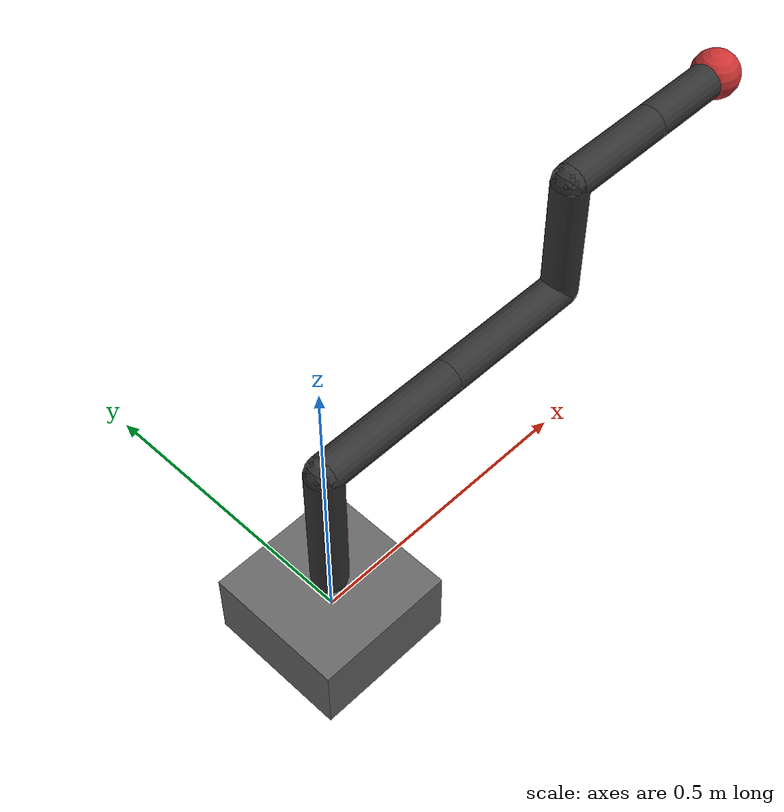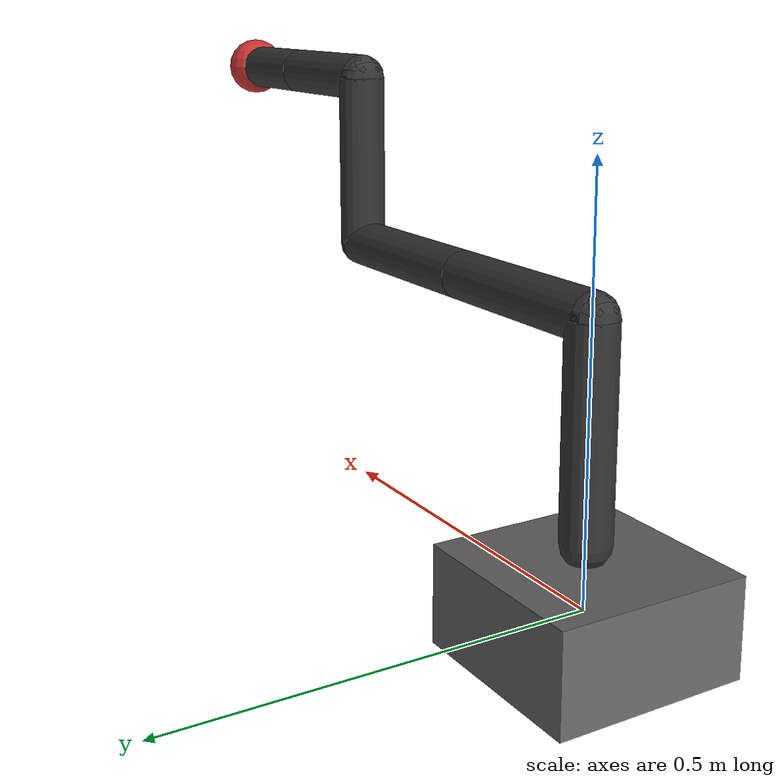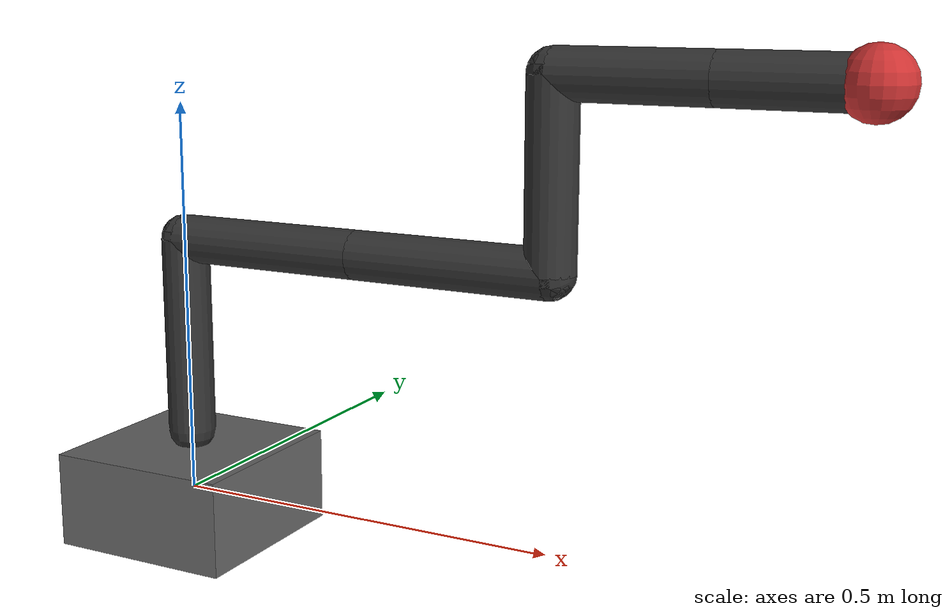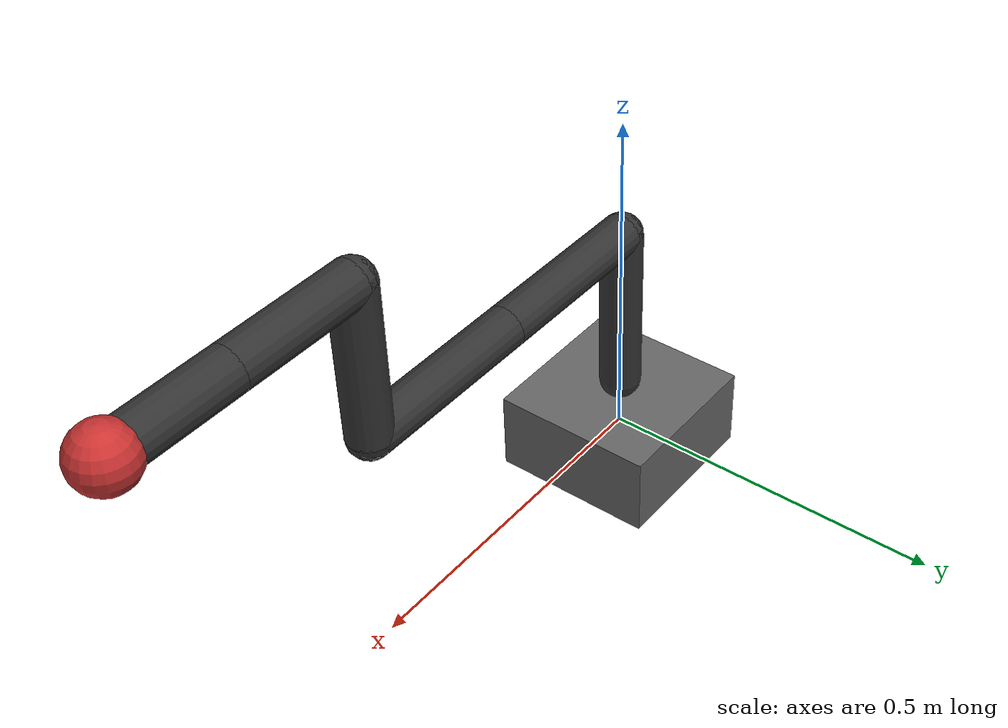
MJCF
<mujoco model="six_dof_chain">
  <compiler angle="radian" inertiafromgeom="true"/>
  <option timestep="0.002" gravity="0 0 -9.81" integrator="RK4"/>

  <default>
    <geom type="capsule" size="0.03" rgba="0.2 0.2 0.2 1"/>
    <joint type="hinge" damping="0.2" armature="0.02" limited="true"/>
    <motor ctrllimited="true" ctrlrange="-120 120"/>
  </default>

  <worldbody>
    <light pos="0 0 2" dir="0 0 -1"/>
    <body name="base" pos="0 0 0">
      <geom type="box" size="0.12 0.12 0.06" rgba="0.4 0.4 0.4 1"/>

      <body name="link1" pos="0 0 0.08">
        <joint name="j1" axis="0 0 1" range="-3.1416 3.1416"/>
        <geom fromto="0 0 0  0 0 0.25" />

        <body name="link2" pos="0 0 0.25">
          <joint name="j2" axis="0 1 0" range="-2.4 2.4"/>
          <geom fromto="0 0 0  0.25 0 0" />

          <body name="link3" pos="0.25 0 0">
            <joint name="j3" axis="0 1 0" range="-2.4 2.4"/>
            <geom fromto="0 0 0  0.25 0 0" />

            <body name="link4" pos="0.25 0 0">
              <joint name="j4" axis="1 0 0" range="-3.1416 3.1416"/>
              <geom fromto="0 0 0  0 0 0.22" />

              <body name="link5" pos="0 0 0.22">
                <joint name="j5" axis="0 1 0" range="-2.1 2.1"/>
                <geom fromto="0 0 0  0.18 0 0" />

                <body name="link6" pos="0.18 0 0">
                  <joint name="j6" axis="1 0 0" range="-3.1416 3.1416"/>
                  <geom fromto="0 0 0  0.16 0 0" />

                  <body name="ee" pos="0.16 0 0">
                    <geom type="sphere" size="0.04" rgba="0.8 0.2 0.2 1"/>
                  </body>
                </body>
              </body>
            </body>
          </body>
        </body>
      </body>
    </body>
  </worldbody>

  <actuator>
    <motor name="a1" joint="j1"/>
    <motor name="a2" joint="j2"/>
    <motor name="a3" joint="j3"/>
    <motor name="a4" joint="j4"/>
    <motor name="a5" joint="j5"/>
    <motor name="a6" joint="j6"/>
  </actuator>
</mujoco>
